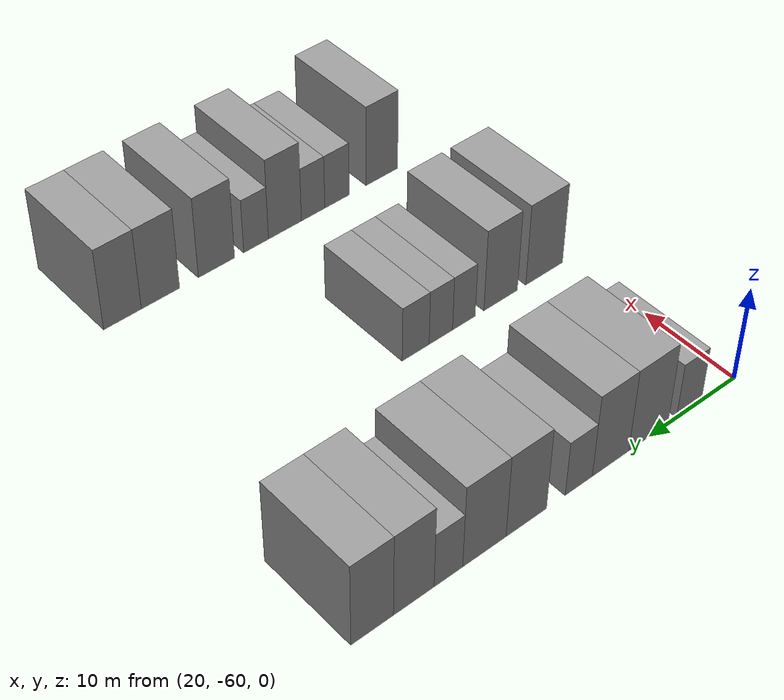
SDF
<sdf version="1.6">
 <world name="default">
  <model name="building_43">
   <static>1</static>
   <pose>25.0000 -54.6282 0 0.000000 0.000000 0.000000</pose>
   <link name="link">
    <pose>0 0 3.00 0 0 0</pose>
    <collision name="collision"><geometry><box><size>10.0000 2.9298 6.0000</size></box></geometry></collision>
    <visual name="visual">
     <cast_shadows>0</cast_shadows>
     <geometry><box><size>10.0000 2.9298 6.0000</size></box></geometry>
     <material>
      <script>
       <uri>model://grey_wall/materials/scripts</uri>
       <uri>model://grey_wall/materials/textures</uri>
       <name>vrc/grey_wall</name>
      </script>
     </material>
    </visual>
   </link>
  </model>
  <model name="building_44">
   <static>1</static>
   <pose>25.0000 -49.9291 0 0.000000 0.000000 0.000000</pose>
   <link name="link">
    <pose>0 0 4.50 0 0 0</pose>
    <collision name="collision"><geometry><box><size>10.0000 4.4683 9.0000</size></box></geometry></collision>
    <visual name="visual">
     <cast_shadows>0</cast_shadows>
     <geometry><box><size>10.0000 4.4683 9.0000</size></box></geometry>
     <material>
      <script>
       <uri>model://grey_wall/materials/scripts</uri>
       <uri>model://grey_wall/materials/textures</uri>
       <name>vrc/grey_wall</name>
      </script>
     </material>
    </visual>
   </link>
  </model>
  <model name="building_45">
   <static>1</static>
   <pose>25.0000 -45.6569 0 0.000000 0.000000 0.000000</pose>
   <link name="link">
    <pose>0 0 4.50 0 0 0</pose>
    <collision name="collision"><geometry><box><size>10.0000 4.0762 9.0000</size></box></geometry></collision>
    <visual name="visual">
     <cast_shadows>0</cast_shadows>
     <geometry><box><size>10.0000 4.0762 9.0000</size></box></geometry>
     <material>
      <script>
       <uri>model://grey_wall/materials/scripts</uri>
       <uri>model://grey_wall/materials/textures</uri>
       <name>vrc/grey_wall</name>
      </script>
     </material>
    </visual>
   </link>
  </model>
  <model name="building_46">
   <static>1</static>
   <pose>25.0000 -42.1469 0 0.000000 0.000000 0.000000</pose>
   <link name="link">
    <pose>0 0 3.00 0 0 0</pose>
    <collision name="collision"><geometry><box><size>10.0000 2.9438 6.0000</size></box></geometry></collision>
    <visual name="visual">
     <cast_shadows>0</cast_shadows>
     <geometry><box><size>10.0000 2.9438 6.0000</size></box></geometry>
     <material>
      <script>
       <uri>model://grey_wall/materials/scripts</uri>
       <uri>model://grey_wall/materials/textures</uri>
       <name>vrc/grey_wall</name>
      </script>
     </material>
    </visual>
   </link>
  </model>
  <model name="building_47">
   <static>1</static>
   <pose>25.0000 -36.5564 0 0.000000 0.000000 0.000000</pose>
   <link name="link">
    <pose>0 0 4.50 0 0 0</pose>
    <collision name="collision"><geometry><box><size>10.0000 4.2373 9.0000</size></box></geometry></collision>
    <visual name="visual">
     <cast_shadows>0</cast_shadows>
     <geometry><box><size>10.0000 4.2373 9.0000</size></box></geometry>
     <material>
      <script>
       <uri>model://grey_wall/materials/scripts</uri>
       <uri>model://grey_wall/materials/textures</uri>
       <name>vrc/grey_wall</name>
      </script>
     </material>
    </visual>
   </link>
  </model>
  <model name="building_48">
   <static>1</static>
   <pose>25.0000 -32.2310 0 0.000000 0.000000 0.000000</pose>
   <link name="link">
    <pose>0 0 4.50 0 0 0</pose>
    <collision name="collision"><geometry><box><size>10.0000 4.4135 9.0000</size></box></geometry></collision>
    <visual name="visual">
     <cast_shadows>0</cast_shadows>
     <geometry><box><size>10.0000 4.4135 9.0000</size></box></geometry>
     <material>
      <script>
       <uri>model://grey_wall/materials/scripts</uri>
       <uri>model://grey_wall/materials/textures</uri>
       <name>vrc/grey_wall</name>
      </script>
     </material>
    </visual>
   </link>
  </model>
  <model name="building_49">
   <static>1</static>
   <pose>25.0000 -28.6008 0 0.000000 0.000000 0.000000</pose>
   <link name="link">
    <pose>0 0 3.00 0 0 0</pose>
    <collision name="collision"><geometry><box><size>10.0000 2.8468 6.0000</size></box></geometry></collision>
    <visual name="visual">
     <cast_shadows>0</cast_shadows>
     <geometry><box><size>10.0000 2.8468 6.0000</size></box></geometry>
     <material>
      <script>
       <uri>model://grey_wall/materials/scripts</uri>
       <uri>model://grey_wall/materials/textures</uri>
       <name>vrc/grey_wall</name>
      </script>
     </material>
    </visual>
   </link>
  </model>
  <model name="building_50">
   <static>1</static>
   <pose>25.0000 -25.2103 0 0.000000 0.000000 0.000000</pose>
   <link name="link">
    <pose>0 0 4.50 0 0 0</pose>
    <collision name="collision"><geometry><box><size>10.0000 3.9343 9.0000</size></box></geometry></collision>
    <visual name="visual">
     <cast_shadows>0</cast_shadows>
     <geometry><box><size>10.0000 3.9343 9.0000</size></box></geometry>
     <material>
      <script>
       <uri>model://grey_wall/materials/scripts</uri>
       <uri>model://grey_wall/materials/textures</uri>
       <name>vrc/grey_wall</name>
      </script>
     </material>
    </visual>
   </link>
  </model>
  <model name="building_51">
   <static>1</static>
   <pose>25.0000 -21.2290 0 0.000000 0.000000 0.000000</pose>
   <link name="link">
    <pose>0 0 4.50 0 0 0</pose>
    <collision name="collision"><geometry><box><size>10.0000 4.0283 9.0000</size></box></geometry></collision>
    <visual name="visual">
     <cast_shadows>0</cast_shadows>
     <geometry><box><size>10.0000 4.0283 9.0000</size></box></geometry>
     <material>
      <script>
       <uri>model://grey_wall/materials/scripts</uri>
       <uri>model://grey_wall/materials/textures</uri>
       <name>vrc/grey_wall</name>
      </script>
     </material>
    </visual>
   </link>
  </model>
  <model name="building_161">
   <static>1</static>
   <pose>44.0000 -56.8940 0 0.000000 0.000000 0.000000</pose>
   <link name="link">
    <pose>0 0 4.50 0 0 0</pose>
    <collision name="collision"><geometry><box><size>10.0000 4.4119 9.0000</size></box></geometry></collision>
    <visual name="visual">
     <cast_shadows>0</cast_shadows>
     <geometry><box><size>10.0000 4.4119 9.0000</size></box></geometry>
     <material>
      <script>
       <uri>model://grey_wall/materials/scripts</uri>
       <uri>model://grey_wall/materials/textures</uri>
       <name>vrc/grey_wall</name>
      </script>
     </material>
    </visual>
   </link>
  </model>
  <model name="building_162">
   <static>1</static>
   <pose>44.0000 -51.7333 0 0.000000 0.000000 0.000000</pose>
   <link name="link">
    <pose>0 0 4.50 0 0 0</pose>
    <collision name="collision"><geometry><box><size>10.0000 3.9095 9.0000</size></box></geometry></collision>
    <visual name="visual">
     <cast_shadows>0</cast_shadows>
     <geometry><box><size>10.0000 3.9095 9.0000</size></box></geometry>
     <material>
      <script>
       <uri>model://grey_wall/materials/scripts</uri>
       <uri>model://grey_wall/materials/textures</uri>
       <name>vrc/grey_wall</name>
      </script>
     </material>
    </visual>
   </link>
  </model>
  <model name="building_163">
   <static>1</static>
   <pose>44.0000 -47.4882 0 0.000000 0.000000 0.000000</pose>
   <link name="link">
    <pose>0 0 3.00 0 0 0</pose>
    <collision name="collision"><geometry><box><size>10.0000 2.5806 6.0000</size></box></geometry></collision>
    <visual name="visual">
     <cast_shadows>0</cast_shadows>
     <geometry><box><size>10.0000 2.5806 6.0000</size></box></geometry>
     <material>
      <script>
       <uri>model://grey_wall/materials/scripts</uri>
       <uri>model://grey_wall/materials/textures</uri>
       <name>vrc/grey_wall</name>
      </script>
     </material>
    </visual>
   </link>
  </model>
  <model name="building_164">
   <static>1</static>
   <pose>44.0000 -44.8815 0 0.000000 0.000000 0.000000</pose>
   <link name="link">
    <pose>0 0 3.00 0 0 0</pose>
    <collision name="collision"><geometry><box><size>10.0000 2.6329 6.0000</size></box></geometry></collision>
    <visual name="visual">
     <cast_shadows>0</cast_shadows>
     <geometry><box><size>10.0000 2.6329 6.0000</size></box></geometry>
     <material>
      <script>
       <uri>model://grey_wall/materials/scripts</uri>
       <uri>model://grey_wall/materials/textures</uri>
       <name>vrc/grey_wall</name>
      </script>
     </material>
    </visual>
   </link>
  </model>
  <model name="building_165">
   <static>1</static>
   <pose>44.0000 -42.0768 0 0.000000 0.000000 0.000000</pose>
   <link name="link">
    <pose>0 0 3.00 0 0 0</pose>
    <collision name="collision"><geometry><box><size>10.0000 2.9766 6.0000</size></box></geometry></collision>
    <visual name="visual">
     <cast_shadows>0</cast_shadows>
     <geometry><box><size>10.0000 2.9766 6.0000</size></box></geometry>
     <material>
      <script>
       <uri>model://grey_wall/materials/scripts</uri>
       <uri>model://grey_wall/materials/textures</uri>
       <name>vrc/grey_wall</name>
      </script>
     </material>
    </visual>
   </link>
  </model>
  <model name="building_284">
   <static>1</static>
   <pose>63.0000 -54.6612 0 0.000000 0.000000 0.000000</pose>
   <link name="link">
    <pose>0 0 4.50 0 0 0</pose>
    <collision name="collision"><geometry><box><size>10.0000 3.7875 9.0000</size></box></geometry></collision>
    <visual name="visual">
     <cast_shadows>0</cast_shadows>
     <geometry><box><size>10.0000 3.7875 9.0000</size></box></geometry>
     <material>
      <script>
       <uri>model://grey_wall/materials/scripts</uri>
       <uri>model://grey_wall/materials/textures</uri>
       <name>vrc/grey_wall</name>
      </script>
     </material>
    </visual>
   </link>
  </model>
  <model name="building_285">
   <static>1</static>
   <pose>63.0000 -49.3370 0 0.000000 0.000000 0.000000</pose>
   <link name="link">
    <pose>0 0 3.00 0 0 0</pose>
    <collision name="collision"><geometry><box><size>10.0000 2.8609 6.0000</size></box></geometry></collision>
    <visual name="visual">
     <cast_shadows>0</cast_shadows>
     <geometry><box><size>10.0000 2.8609 6.0000</size></box></geometry>
     <material>
      <script>
       <uri>model://grey_wall/materials/scripts</uri>
       <uri>model://grey_wall/materials/textures</uri>
       <name>vrc/grey_wall</name>
      </script>
     </material>
    </visual>
   </link>
  </model>
  <model name="building_286">
   <static>1</static>
   <pose>63.0000 -46.5554 0 0.000000 0.000000 0.000000</pose>
   <link name="link">
    <pose>0 0 3.00 0 0 0</pose>
    <collision name="collision"><geometry><box><size>10.0000 2.7024 6.0000</size></box></geometry></collision>
    <visual name="visual">
     <cast_shadows>0</cast_shadows>
     <geometry><box><size>10.0000 2.7024 6.0000</size></box></geometry>
     <material>
      <script>
       <uri>model://grey_wall/materials/scripts</uri>
       <uri>model://grey_wall/materials/textures</uri>
       <name>vrc/grey_wall</name>
      </script>
     </material>
    </visual>
   </link>
  </model>
  <model name="building_287">
   <static>1</static>
   <pose>63.0000 -43.3397 0 0.000000 0.000000 0.000000</pose>
   <link name="link">
    <pose>0 0 4.50 0 0 0</pose>
    <collision name="collision"><geometry><box><size>10.0000 3.7291 9.0000</size></box></geometry></collision>
    <visual name="visual">
     <cast_shadows>0</cast_shadows>
     <geometry><box><size>10.0000 3.7291 9.0000</size></box></geometry>
     <material>
      <script>
       <uri>model://grey_wall/materials/scripts</uri>
       <uri>model://grey_wall/materials/textures</uri>
       <name>vrc/grey_wall</name>
      </script>
     </material>
    </visual>
   </link>
  </model>
  <model name="building_288">
   <static>1</static>
   <pose>63.0000 -40.0991 0 0.000000 0.000000 0.000000</pose>
   <link name="link">
    <pose>0 0 3.00 0 0 0</pose>
    <collision name="collision"><geometry><box><size>10.0000 2.7519 6.0000</size></box></geometry></collision>
    <visual name="visual">
     <cast_shadows>0</cast_shadows>
     <geometry><box><size>10.0000 2.7519 6.0000</size></box></geometry>
     <material>
      <script>
       <uri>model://grey_wall/materials/scripts</uri>
       <uri>model://grey_wall/materials/textures</uri>
       <name>vrc/grey_wall</name>
      </script>
     </material>
    </visual>
   </link>
  </model>
  <model name="building_289">
   <static>1</static>
   <pose>63.0000 -35.7587 0 0.000000 0.000000 0.000000</pose>
   <link name="link">
    <pose>0 0 4.50 0 0 0</pose>
    <collision name="collision"><geometry><box><size>10.0000 3.9291 9.0000</size></box></geometry></collision>
    <visual name="visual">
     <cast_shadows>0</cast_shadows>
     <geometry><box><size>10.0000 3.9291 9.0000</size></box></geometry>
     <material>
      <script>
       <uri>model://grey_wall/materials/scripts</uri>
       <uri>model://grey_wall/materials/textures</uri>
       <name>vrc/grey_wall</name>
      </script>
     </material>
    </visual>
   </link>
  </model>
  <model name="building_290">
   <static>1</static>
   <pose>63.0000 -29.7932 0 0.000000 0.000000 0.000000</pose>
   <link name="link">
    <pose>0 0 4.50 0 0 0</pose>
    <collision name="collision"><geometry><box><size>10.0000 4.0018 9.0000</size></box></geometry></collision>
    <visual name="visual">
     <cast_shadows>0</cast_shadows>
     <geometry><box><size>10.0000 4.0018 9.0000</size></box></geometry>
     <material>
      <script>
       <uri>model://grey_wall/materials/scripts</uri>
       <uri>model://grey_wall/materials/textures</uri>
       <name>vrc/grey_wall</name>
      </script>
     </material>
    </visual>
   </link>
  </model>
  <model name="building_291">
   <static>1</static>
   <pose>63.0000 -25.8613 0 0.000000 0.000000 0.000000</pose>
   <link name="link">
    <pose>0 0 4.50 0 0 0</pose>
    <collision name="collision"><geometry><box><size>10.0000 3.8619 9.0000</size></box></geometry></collision>
    <visual name="visual">
     <cast_shadows>0</cast_shadows>
     <geometry><box><size>10.0000 3.8619 9.0000</size></box></geometry>
     <material>
      <script>
       <uri>model://grey_wall/materials/scripts</uri>
       <uri>model://grey_wall/materials/textures</uri>
       <name>vrc/grey_wall</name>
      </script>
     </material>
    </visual>
   </link>
  </model>
 </world>
</sdf>
